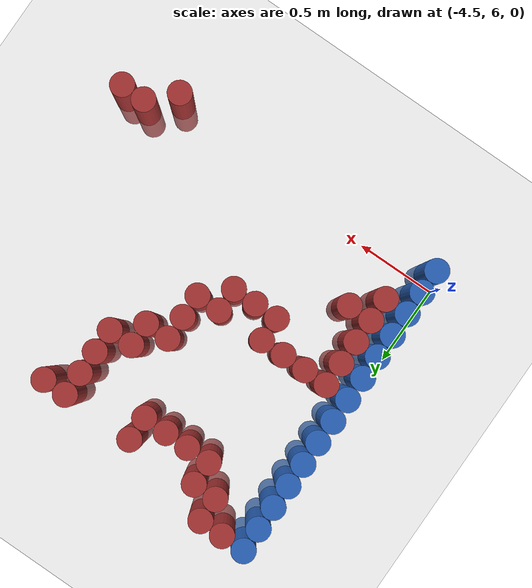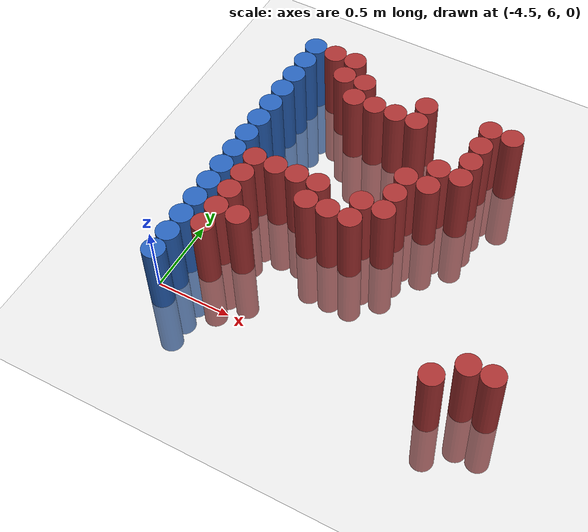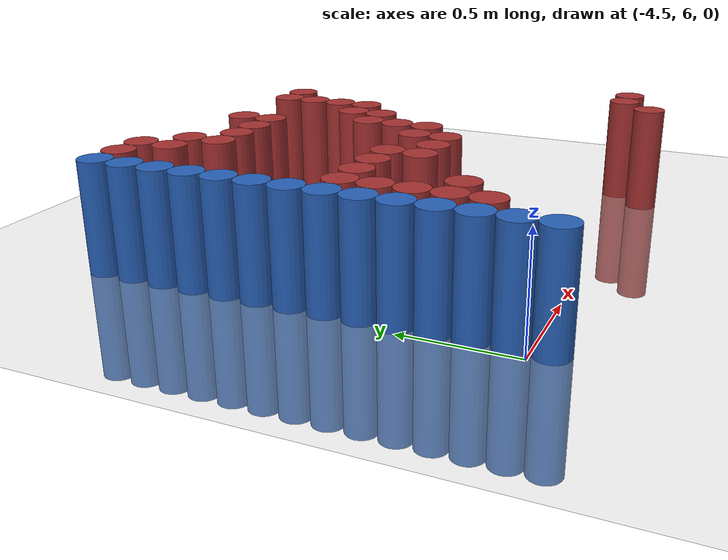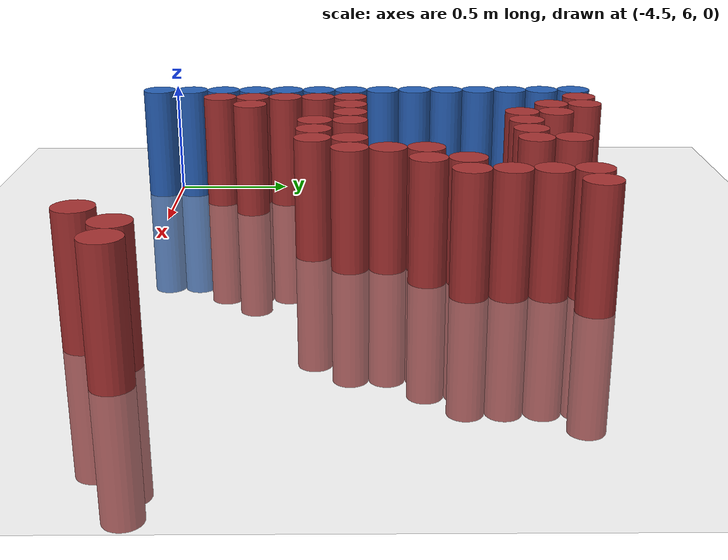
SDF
<sdf version="1.6">
 <world name="default">
  <model name="ground_plane">
   <static>1</static>
   <link name="link">
    <collision name="collision">
     <geometry><plane><normal>0 0 1</normal><size>100 100</size></plane></geometry>
     <surface><friction><ode><mu>100</mu><mu2>50</mu2></ode></friction></surface>
    </collision>
    <visual name="visual">
     <cast_shadows>0</cast_shadows>
     <geometry><plane><normal>0 0 1</normal><size>100 100</size></plane></geometry>
     <material>
      <script><uri>file://media/materials/scripts/gazebo.material</uri><name>Gazebo/Grey</name></script>
     </material>
    </visual>
   </link>
  </model>
  <model name="unit_cylinder_101">
   <static>1</static>
   <pose>-4.425000 5.925000 0.000000 0.000000 0.000000 0.000000</pose>
   <link name="link">
    <inertial>
     <mass>1</mass>
     <inertia><ixx>0.145833</ixx><ixy>0</ixy><ixz>0</ixz><iyy>0.145833</iyy><iyz>0</iyz><izz>0.125</izz></inertia>
    </inertial>
    <collision name="collision">
     <geometry><cylinder><radius>0.075000</radius><length>1</length></cylinder></geometry>
    </collision>
    <visual name="visual">
     <geometry><cylinder><radius>0.075000</radius><length>1</length></cylinder></geometry>
     <material>
      <ambient>0.152000 0.379000 0.720000 1</ambient>
      <diffuse>0.152000 0.379000 0.720000 1</diffuse>
     </material>
     <material>
      <script><name>Gazebo/Grey</name><uri>file://media/materials/scripts/gazebo.material</uri></script>
     </material>
    </visual>
   </link>
  </model>
  <model name="unit_cylinder_102">
   <static>1</static>
   <pose>-4.425000 6.075000 0.000000 0.000000 0.000000 0.000000</pose>
   <link name="link">
    <inertial>
     <mass>1</mass>
     <inertia><ixx>0.145833</ixx><ixy>0</ixy><ixz>0</ixz><iyy>0.145833</iyy><iyz>0</iyz><izz>0.125</izz></inertia>
    </inertial>
    <collision name="collision">
     <geometry><cylinder><radius>0.075000</radius><length>1</length></cylinder></geometry>
    </collision>
    <visual name="visual">
     <geometry><cylinder><radius>0.075000</radius><length>1</length></cylinder></geometry>
     <material>
      <ambient>0.152000 0.379000 0.720000 1</ambient>
      <diffuse>0.152000 0.379000 0.720000 1</diffuse>
     </material>
     <material>
      <script><name>Gazebo/Grey</name><uri>file://media/materials/scripts/gazebo.material</uri></script>
     </material>
    </visual>
   </link>
  </model>
  <model name="unit_cylinder_103">
   <static>1</static>
   <pose>-4.425000 6.225000 0.000000 0.000000 0.000000 0.000000</pose>
   <link name="link">
    <inertial>
     <mass>1</mass>
     <inertia><ixx>0.145833</ixx><ixy>0</ixy><ixz>0</ixz><iyy>0.145833</iyy><iyz>0</iyz><izz>0.125</izz></inertia>
    </inertial>
    <collision name="collision">
     <geometry><cylinder><radius>0.075000</radius><length>1</length></cylinder></geometry>
    </collision>
    <visual name="visual">
     <geometry><cylinder><radius>0.075000</radius><length>1</length></cylinder></geometry>
     <material>
      <ambient>0.152000 0.379000 0.720000 1</ambient>
      <diffuse>0.152000 0.379000 0.720000 1</diffuse>
     </material>
     <material>
      <script><name>Gazebo/Grey</name><uri>file://media/materials/scripts/gazebo.material</uri></script>
     </material>
    </visual>
   </link>
  </model>
  <model name="unit_cylinder_104">
   <static>1</static>
   <pose>-4.425000 6.375000 0.000000 0.000000 0.000000 0.000000</pose>
   <link name="link">
    <inertial>
     <mass>1</mass>
     <inertia><ixx>0.145833</ixx><ixy>0</ixy><ixz>0</ixz><iyy>0.145833</iyy><iyz>0</iyz><izz>0.125</izz></inertia>
    </inertial>
    <collision name="collision">
     <geometry><cylinder><radius>0.075000</radius><length>1</length></cylinder></geometry>
    </collision>
    <visual name="visual">
     <geometry><cylinder><radius>0.075000</radius><length>1</length></cylinder></geometry>
     <material>
      <ambient>0.152000 0.379000 0.720000 1</ambient>
      <diffuse>0.152000 0.379000 0.720000 1</diffuse>
     </material>
     <material>
      <script><name>Gazebo/Grey</name><uri>file://media/materials/scripts/gazebo.material</uri></script>
     </material>
    </visual>
   </link>
  </model>
  <model name="unit_cylinder_105">
   <static>1</static>
   <pose>-4.425000 6.525000 0.000000 0.000000 0.000000 0.000000</pose>
   <link name="link">
    <inertial>
     <mass>1</mass>
     <inertia><ixx>0.145833</ixx><ixy>0</ixy><ixz>0</ixz><iyy>0.145833</iyy><iyz>0</iyz><izz>0.125</izz></inertia>
    </inertial>
    <collision name="collision">
     <geometry><cylinder><radius>0.075000</radius><length>1</length></cylinder></geometry>
    </collision>
    <visual name="visual">
     <geometry><cylinder><radius>0.075000</radius><length>1</length></cylinder></geometry>
     <material>
      <ambient>0.152000 0.379000 0.720000 1</ambient>
      <diffuse>0.152000 0.379000 0.720000 1</diffuse>
     </material>
     <material>
      <script><name>Gazebo/Grey</name><uri>file://media/materials/scripts/gazebo.material</uri></script>
     </material>
    </visual>
   </link>
  </model>
  <model name="unit_cylinder_106">
   <static>1</static>
   <pose>-4.425000 6.675000 0.000000 0.000000 0.000000 0.000000</pose>
   <link name="link">
    <inertial>
     <mass>1</mass>
     <inertia><ixx>0.145833</ixx><ixy>0</ixy><ixz>0</ixz><iyy>0.145833</iyy><iyz>0</iyz><izz>0.125</izz></inertia>
    </inertial>
    <collision name="collision">
     <geometry><cylinder><radius>0.075000</radius><length>1</length></cylinder></geometry>
    </collision>
    <visual name="visual">
     <geometry><cylinder><radius>0.075000</radius><length>1</length></cylinder></geometry>
     <material>
      <ambient>0.152000 0.379000 0.720000 1</ambient>
      <diffuse>0.152000 0.379000 0.720000 1</diffuse>
     </material>
     <material>
      <script><name>Gazebo/Grey</name><uri>file://media/materials/scripts/gazebo.material</uri></script>
     </material>
    </visual>
   </link>
  </model>
  <model name="unit_cylinder_107">
   <static>1</static>
   <pose>-4.425000 6.825000 0.000000 0.000000 0.000000 0.000000</pose>
   <link name="link">
    <inertial>
     <mass>1</mass>
     <inertia><ixx>0.145833</ixx><ixy>0</ixy><ixz>0</ixz><iyy>0.145833</iyy><iyz>0</iyz><izz>0.125</izz></inertia>
    </inertial>
    <collision name="collision">
     <geometry><cylinder><radius>0.075000</radius><length>1</length></cylinder></geometry>
    </collision>
    <visual name="visual">
     <geometry><cylinder><radius>0.075000</radius><length>1</length></cylinder></geometry>
     <material>
      <ambient>0.152000 0.379000 0.720000 1</ambient>
      <diffuse>0.152000 0.379000 0.720000 1</diffuse>
     </material>
     <material>
      <script><name>Gazebo/Grey</name><uri>file://media/materials/scripts/gazebo.material</uri></script>
     </material>
    </visual>
   </link>
  </model>
  <model name="unit_cylinder_108">
   <static>1</static>
   <pose>-4.425000 6.975000 0.000000 0.000000 0.000000 0.000000</pose>
   <link name="link">
    <inertial>
     <mass>1</mass>
     <inertia><ixx>0.145833</ixx><ixy>0</ixy><ixz>0</ixz><iyy>0.145833</iyy><iyz>0</iyz><izz>0.125</izz></inertia>
    </inertial>
    <collision name="collision">
     <geometry><cylinder><radius>0.075000</radius><length>1</length></cylinder></geometry>
    </collision>
    <visual name="visual">
     <geometry><cylinder><radius>0.075000</radius><length>1</length></cylinder></geometry>
     <material>
      <ambient>0.152000 0.379000 0.720000 1</ambient>
      <diffuse>0.152000 0.379000 0.720000 1</diffuse>
     </material>
     <material>
      <script><name>Gazebo/Grey</name><uri>file://media/materials/scripts/gazebo.material</uri></script>
     </material>
    </visual>
   </link>
  </model>
  <model name="unit_cylinder_109">
   <static>1</static>
   <pose>-4.425000 7.125000 0.000000 0.000000 0.000000 0.000000</pose>
   <link name="link">
    <inertial>
     <mass>1</mass>
     <inertia><ixx>0.145833</ixx><ixy>0</ixy><ixz>0</ixz><iyy>0.145833</iyy><iyz>0</iyz><izz>0.125</izz></inertia>
    </inertial>
    <collision name="collision">
     <geometry><cylinder><radius>0.075000</radius><length>1</length></cylinder></geometry>
    </collision>
    <visual name="visual">
     <geometry><cylinder><radius>0.075000</radius><length>1</length></cylinder></geometry>
     <material>
      <ambient>0.152000 0.379000 0.720000 1</ambient>
      <diffuse>0.152000 0.379000 0.720000 1</diffuse>
     </material>
     <material>
      <script><name>Gazebo/Grey</name><uri>file://media/materials/scripts/gazebo.material</uri></script>
     </material>
    </visual>
   </link>
  </model>
  <model name="unit_cylinder_110">
   <static>1</static>
   <pose>-4.425000 7.275000 0.000000 0.000000 0.000000 0.000000</pose>
   <link name="link">
    <inertial>
     <mass>1</mass>
     <inertia><ixx>0.145833</ixx><ixy>0</ixy><ixz>0</ixz><iyy>0.145833</iyy><iyz>0</iyz><izz>0.125</izz></inertia>
    </inertial>
    <collision name="collision">
     <geometry><cylinder><radius>0.075000</radius><length>1</length></cylinder></geometry>
    </collision>
    <visual name="visual">
     <geometry><cylinder><radius>0.075000</radius><length>1</length></cylinder></geometry>
     <material>
      <ambient>0.152000 0.379000 0.720000 1</ambient>
      <diffuse>0.152000 0.379000 0.720000 1</diffuse>
     </material>
     <material>
      <script><name>Gazebo/Grey</name><uri>file://media/materials/scripts/gazebo.material</uri></script>
     </material>
    </visual>
   </link>
  </model>
  <model name="unit_cylinder_111">
   <static>1</static>
   <pose>-4.425000 7.425000 0.000000 0.000000 0.000000 0.000000</pose>
   <link name="link">
    <inertial>
     <mass>1</mass>
     <inertia><ixx>0.145833</ixx><ixy>0</ixy><ixz>0</ixz><iyy>0.145833</iyy><iyz>0</iyz><izz>0.125</izz></inertia>
    </inertial>
    <collision name="collision">
     <geometry><cylinder><radius>0.075000</radius><length>1</length></cylinder></geometry>
    </collision>
    <visual name="visual">
     <geometry><cylinder><radius>0.075000</radius><length>1</length></cylinder></geometry>
     <material>
      <ambient>0.152000 0.379000 0.720000 1</ambient>
      <diffuse>0.152000 0.379000 0.720000 1</diffuse>
     </material>
     <material>
      <script><name>Gazebo/Grey</name><uri>file://media/materials/scripts/gazebo.material</uri></script>
     </material>
    </visual>
   </link>
  </model>
  <model name="unit_cylinder_112">
   <static>1</static>
   <pose>-4.425000 7.575000 0.000000 0.000000 0.000000 0.000000</pose>
   <link name="link">
    <inertial>
     <mass>1</mass>
     <inertia><ixx>0.145833</ixx><ixy>0</ixy><ixz>0</ixz><iyy>0.145833</iyy><iyz>0</iyz><izz>0.125</izz></inertia>
    </inertial>
    <collision name="collision">
     <geometry><cylinder><radius>0.075000</radius><length>1</length></cylinder></geometry>
    </collision>
    <visual name="visual">
     <geometry><cylinder><radius>0.075000</radius><length>1</length></cylinder></geometry>
     <material>
      <ambient>0.152000 0.379000 0.720000 1</ambient>
      <diffuse>0.152000 0.379000 0.720000 1</diffuse>
     </material>
     <material>
      <script><name>Gazebo/Grey</name><uri>file://media/materials/scripts/gazebo.material</uri></script>
     </material>
    </visual>
   </link>
  </model>
  <model name="unit_cylinder_113">
   <static>1</static>
   <pose>-4.425000 7.725000 0.000000 0.000000 0.000000 0.000000</pose>
   <link name="link">
    <inertial>
     <mass>1</mass>
     <inertia><ixx>0.145833</ixx><ixy>0</ixy><ixz>0</ixz><iyy>0.145833</iyy><iyz>0</iyz><izz>0.125</izz></inertia>
    </inertial>
    <collision name="collision">
     <geometry><cylinder><radius>0.075000</radius><length>1</length></cylinder></geometry>
    </collision>
    <visual name="visual">
     <geometry><cylinder><radius>0.075000</radius><length>1</length></cylinder></geometry>
     <material>
      <ambient>0.152000 0.379000 0.720000 1</ambient>
      <diffuse>0.152000 0.379000 0.720000 1</diffuse>
     </material>
     <material>
      <script><name>Gazebo/Grey</name><uri>file://media/materials/scripts/gazebo.material</uri></script>
     </material>
    </visual>
   </link>
  </model>
  <model name="unit_cylinder_114">
   <static>1</static>
   <pose>-4.425000 7.875000 0.000000 0.000000 0.000000 0.000000</pose>
   <link name="link">
    <inertial>
     <mass>1</mass>
     <inertia><ixx>0.145833</ixx><ixy>0</ixy><ixz>0</ixz><iyy>0.145833</iyy><iyz>0</iyz><izz>0.125</izz></inertia>
    </inertial>
    <collision name="collision">
     <geometry><cylinder><radius>0.075000</radius><length>1</length></cylinder></geometry>
    </collision>
    <visual name="visual">
     <geometry><cylinder><radius>0.075000</radius><length>1</length></cylinder></geometry>
     <material>
      <ambient>0.152000 0.379000 0.720000 1</ambient>
      <diffuse>0.152000 0.379000 0.720000 1</diffuse>
     </material>
     <material>
      <script><name>Gazebo/Grey</name><uri>file://media/materials/scripts/gazebo.material</uri></script>
     </material>
    </visual>
   </link>
  </model>
  <model name="unit_cylinder_128">
   <static>1</static>
   <pose>-4.275000 6.225000 0.000000 0.000000 0.000000 0.000000</pose>
   <link name="link">
    <inertial>
     <mass>1</mass>
     <inertia><ixx>0.145833</ixx><ixy>0</ixy><ixz>0</ixz><iyy>0.145833</iyy><iyz>0</iyz><izz>0.125</izz></inertia>
    </inertial>
    <collision name="collision">
     <geometry><cylinder><radius>0.075000</radius><length>1</length></cylinder></geometry>
    </collision>
    <visual name="visual">
     <geometry><cylinder><radius>0.075000</radius><length>1</length></cylinder></geometry>
     <material>
      <ambient>0.648000 0.192000 0.192000 1</ambient>
      <diffuse>0.648000 0.192000 0.192000 1</diffuse>
     </material>
     <material>
      <script><name>Gazebo/Grey</name><uri>file://media/materials/scripts/gazebo.material</uri></script>
     </material>
    </visual>
   </link>
  </model>
  <model name="unit_cylinder_129">
   <static>1</static>
   <pose>-4.275000 6.375000 0.000000 0.000000 0.000000 0.000000</pose>
   <link name="link">
    <inertial>
     <mass>1</mass>
     <inertia><ixx>0.145833</ixx><ixy>0</ixy><ixz>0</ixz><iyy>0.145833</iyy><iyz>0</iyz><izz>0.125</izz></inertia>
    </inertial>
    <collision name="collision">
     <geometry><cylinder><radius>0.075000</radius><length>1</length></cylinder></geometry>
    </collision>
    <visual name="visual">
     <geometry><cylinder><radius>0.075000</radius><length>1</length></cylinder></geometry>
     <material>
      <ambient>0.648000 0.192000 0.192000 1</ambient>
      <diffuse>0.648000 0.192000 0.192000 1</diffuse>
     </material>
     <material>
      <script><name>Gazebo/Grey</name><uri>file://media/materials/scripts/gazebo.material</uri></script>
     </material>
    </visual>
   </link>
  </model>
  <model name="unit_cylinder_130">
   <static>1</static>
   <pose>-4.275000 6.525000 0.000000 0.000000 0.000000 0.000000</pose>
   <link name="link">
    <inertial>
     <mass>1</mass>
     <inertia><ixx>0.145833</ixx><ixy>0</ixy><ixz>0</ixz><iyy>0.145833</iyy><iyz>0</iyz><izz>0.125</izz></inertia>
    </inertial>
    <collision name="collision">
     <geometry><cylinder><radius>0.075000</radius><length>1</length></cylinder></geometry>
    </collision>
    <visual name="visual">
     <geometry><cylinder><radius>0.075000</radius><length>1</length></cylinder></geometry>
     <material>
      <ambient>0.648000 0.192000 0.192000 1</ambient>
      <diffuse>0.648000 0.192000 0.192000 1</diffuse>
     </material>
     <material>
      <script><name>Gazebo/Grey</name><uri>file://media/materials/scripts/gazebo.material</uri></script>
     </material>
    </visual>
   </link>
  </model>
  <model name="unit_cylinder_131">
   <static>1</static>
   <pose>-4.275000 6.675000 0.000000 0.000000 0.000000 0.000000</pose>
   <link name="link">
    <inertial>
     <mass>1</mass>
     <inertia><ixx>0.145833</ixx><ixy>0</ixy><ixz>0</ixz><iyy>0.145833</iyy><iyz>0</iyz><izz>0.125</izz></inertia>
    </inertial>
    <collision name="collision">
     <geometry><cylinder><radius>0.075000</radius><length>1</length></cylinder></geometry>
    </collision>
    <visual name="visual">
     <geometry><cylinder><radius>0.075000</radius><length>1</length></cylinder></geometry>
     <material>
      <ambient>0.648000 0.192000 0.192000 1</ambient>
      <diffuse>0.648000 0.192000 0.192000 1</diffuse>
     </material>
     <material>
      <script><name>Gazebo/Grey</name><uri>file://media/materials/scripts/gazebo.material</uri></script>
     </material>
    </visual>
   </link>
  </model>
  <model name="unit_cylinder_132">
   <static>1</static>
   <pose>-4.275000 6.825000 0.000000 0.000000 0.000000 0.000000</pose>
   <link name="link">
    <inertial>
     <mass>1</mass>
     <inertia><ixx>0.145833</ixx><ixy>0</ixy><ixz>0</ixz><iyy>0.145833</iyy><iyz>0</iyz><izz>0.125</izz></inertia>
    </inertial>
    <collision name="collision">
     <geometry><cylinder><radius>0.075000</radius><length>1</length></cylinder></geometry>
    </collision>
    <visual name="visual">
     <geometry><cylinder><radius>0.075000</radius><length>1</length></cylinder></geometry>
     <material>
      <ambient>0.648000 0.192000 0.192000 1</ambient>
      <diffuse>0.648000 0.192000 0.192000 1</diffuse>
     </material>
     <material>
      <script><name>Gazebo/Grey</name><uri>file://media/materials/scripts/gazebo.material</uri></script>
     </material>
    </visual>
   </link>
  </model>
  <model name="unit_cylinder_133">
   <static>1</static>
   <pose>-4.275000 7.875000 0.000000 0.000000 0.000000 0.000000</pose>
   <link name="link">
    <inertial>
     <mass>1</mass>
     <inertia><ixx>0.145833</ixx><ixy>0</ixy><ixz>0</ixz><iyy>0.145833</iyy><iyz>0</iyz><izz>0.125</izz></inertia>
    </inertial>
    <collision name="collision">
     <geometry><cylinder><radius>0.075000</radius><length>1</length></cylinder></geometry>
    </collision>
    <visual name="visual">
     <geometry><cylinder><radius>0.075000</radius><length>1</length></cylinder></geometry>
     <material>
      <ambient>0.648000 0.192000 0.192000 1</ambient>
      <diffuse>0.648000 0.192000 0.192000 1</diffuse>
     </material>
     <material>
      <script><name>Gazebo/Grey</name><uri>file://media/materials/scripts/gazebo.material</uri></script>
     </material>
    </visual>
   </link>
  </model>
  <model name="unit_cylinder_140">
   <static>1</static>
   <pose>-4.125000 6.375000 0.000000 0.000000 0.000000 0.000000</pose>
   <link name="link">
    <inertial>
     <mass>1</mass>
     <inertia><ixx>0.145833</ixx><ixy>0</ixy><ixz>0</ixz><iyy>0.145833</iyy><iyz>0</iyz><izz>0.125</izz></inertia>
    </inertial>
    <collision name="collision">
     <geometry><cylinder><radius>0.075000</radius><length>1</length></cylinder></geometry>
    </collision>
    <visual name="visual">
     <geometry><cylinder><radius>0.075000</radius><length>1</length></cylinder></geometry>
     <material>
      <ambient>0.648000 0.192000 0.192000 1</ambient>
      <diffuse>0.648000 0.192000 0.192000 1</diffuse>
     </material>
     <material>
      <script><name>Gazebo/Grey</name><uri>file://media/materials/scripts/gazebo.material</uri></script>
     </material>
    </visual>
   </link>
  </model>
  <model name="unit_cylinder_141">
   <static>1</static>
   <pose>-4.125000 6.825000 0.000000 0.000000 0.000000 0.000000</pose>
   <link name="link">
    <inertial>
     <mass>1</mass>
     <inertia><ixx>0.145833</ixx><ixy>0</ixy><ixz>0</ixz><iyy>0.145833</iyy><iyz>0</iyz><izz>0.125</izz></inertia>
    </inertial>
    <collision name="collision">
     <geometry><cylinder><radius>0.075000</radius><length>1</length></cylinder></geometry>
    </collision>
    <visual name="visual">
     <geometry><cylinder><radius>0.075000</radius><length>1</length></cylinder></geometry>
     <material>
      <ambient>0.648000 0.192000 0.192000 1</ambient>
      <diffuse>0.648000 0.192000 0.192000 1</diffuse>
     </material>
     <material>
      <script><name>Gazebo/Grey</name><uri>file://media/materials/scripts/gazebo.material</uri></script>
     </material>
    </visual>
   </link>
  </model>
  <model name="unit_cylinder_142">
   <static>1</static>
   <pose>-4.125000 7.725000 0.000000 0.000000 0.000000 0.000000</pose>
   <link name="link">
    <inertial>
     <mass>1</mass>
     <inertia><ixx>0.145833</ixx><ixy>0</ixy><ixz>0</ixz><iyy>0.145833</iyy><iyz>0</iyz><izz>0.125</izz></inertia>
    </inertial>
    <collision name="collision">
     <geometry><cylinder><radius>0.075000</radius><length>1</length></cylinder></geometry>
    </collision>
    <visual name="visual">
     <geometry><cylinder><radius>0.075000</radius><length>1</length></cylinder></geometry>
     <material>
      <ambient>0.648000 0.192000 0.192000 1</ambient>
      <diffuse>0.648000 0.192000 0.192000 1</diffuse>
     </material>
     <material>
      <script><name>Gazebo/Grey</name><uri>file://media/materials/scripts/gazebo.material</uri></script>
     </material>
    </visual>
   </link>
  </model>
  <model name="unit_cylinder_143">
   <static>1</static>
   <pose>-4.125000 7.875000 0.000000 0.000000 0.000000 0.000000</pose>
   <link name="link">
    <inertial>
     <mass>1</mass>
     <inertia><ixx>0.145833</ixx><ixy>0</ixy><ixz>0</ixz><iyy>0.145833</iyy><iyz>0</iyz><izz>0.125</izz></inertia>
    </inertial>
    <collision name="collision">
     <geometry><cylinder><radius>0.075000</radius><length>1</length></cylinder></geometry>
    </collision>
    <visual name="visual">
     <geometry><cylinder><radius>0.075000</radius><length>1</length></cylinder></geometry>
     <material>
      <ambient>0.648000 0.192000 0.192000 1</ambient>
      <diffuse>0.648000 0.192000 0.192000 1</diffuse>
     </material>
     <material>
      <script><name>Gazebo/Grey</name><uri>file://media/materials/scripts/gazebo.material</uri></script>
     </material>
    </visual>
   </link>
  </model>
  <model name="unit_cylinder_146">
   <static>1</static>
   <pose>-3.975000 6.825000 0.000000 0.000000 0.000000 0.000000</pose>
   <link name="link">
    <inertial>
     <mass>1</mass>
     <inertia><ixx>0.145833</ixx><ixy>0</ixy><ixz>0</ixz><iyy>0.145833</iyy><iyz>0</iyz><izz>0.125</izz></inertia>
    </inertial>
    <collision name="collision">
     <geometry><cylinder><radius>0.075000</radius><length>1</length></cylinder></geometry>
    </collision>
    <visual name="visual">
     <geometry><cylinder><radius>0.075000</radius><length>1</length></cylinder></geometry>
     <material>
      <ambient>0.648000 0.192000 0.192000 1</ambient>
      <diffuse>0.648000 0.192000 0.192000 1</diffuse>
     </material>
     <material>
      <script><name>Gazebo/Grey</name><uri>file://media/materials/scripts/gazebo.material</uri></script>
     </material>
    </visual>
   </link>
  </model>
  <model name="unit_cylinder_147">
   <static>1</static>
   <pose>-3.975000 7.575000 0.000000 0.000000 0.000000 0.000000</pose>
   <link name="link">
    <inertial>
     <mass>1</mass>
     <inertia><ixx>0.145833</ixx><ixy>0</ixy><ixz>0</ixz><iyy>0.145833</iyy><iyz>0</iyz><izz>0.125</izz></inertia>
    </inertial>
    <collision name="collision">
     <geometry><cylinder><radius>0.075000</radius><length>1</length></cylinder></geometry>
    </collision>
    <visual name="visual">
     <geometry><cylinder><radius>0.075000</radius><length>1</length></cylinder></geometry>
     <material>
      <ambient>0.648000 0.192000 0.192000 1</ambient>
      <diffuse>0.648000 0.192000 0.192000 1</diffuse>
     </material>
     <material>
      <script><name>Gazebo/Grey</name><uri>file://media/materials/scripts/gazebo.material</uri></script>
     </material>
    </visual>
   </link>
  </model>
  <model name="unit_cylinder_148">
   <static>1</static>
   <pose>-3.975000 7.725000 0.000000 0.000000 0.000000 0.000000</pose>
   <link name="link">
    <inertial>
     <mass>1</mass>
     <inertia><ixx>0.145833</ixx><ixy>0</ixy><ixz>0</ixz><iyy>0.145833</iyy><iyz>0</iyz><izz>0.125</izz></inertia>
    </inertial>
    <collision name="collision">
     <geometry><cylinder><radius>0.075000</radius><length>1</length></cylinder></geometry>
    </collision>
    <visual name="visual">
     <geometry><cylinder><radius>0.075000</radius><length>1</length></cylinder></geometry>
     <material>
      <ambient>0.648000 0.192000 0.192000 1</ambient>
      <diffuse>0.648000 0.192000 0.192000 1</diffuse>
     </material>
     <material>
      <script><name>Gazebo/Grey</name><uri>file://media/materials/scripts/gazebo.material</uri></script>
     </material>
    </visual>
   </link>
  </model>
  <model name="unit_cylinder_151">
   <static>1</static>
   <pose>-3.825000 6.675000 0.000000 0.000000 0.000000 0.000000</pose>
   <link name="link">
    <inertial>
     <mass>1</mass>
     <inertia><ixx>0.145833</ixx><ixy>0</ixy><ixz>0</ixz><iyy>0.145833</iyy><iyz>0</iyz><izz>0.125</izz></inertia>
    </inertial>
    <collision name="collision">
     <geometry><cylinder><radius>0.075000</radius><length>1</length></cylinder></geometry>
    </collision>
    <visual name="visual">
     <geometry><cylinder><radius>0.075000</radius><length>1</length></cylinder></geometry>
     <material>
      <ambient>0.648000 0.192000 0.192000 1</ambient>
      <diffuse>0.648000 0.192000 0.192000 1</diffuse>
     </material>
     <material>
      <script><name>Gazebo/Grey</name><uri>file://media/materials/scripts/gazebo.material</uri></script>
     </material>
    </visual>
   </link>
  </model>
  <model name="unit_cylinder_152">
   <static>1</static>
   <pose>-3.825000 6.825000 0.000000 0.000000 0.000000 0.000000</pose>
   <link name="link">
    <inertial>
     <mass>1</mass>
     <inertia><ixx>0.145833</ixx><ixy>0</ixy><ixz>0</ixz><iyy>0.145833</iyy><iyz>0</iyz><izz>0.125</izz></inertia>
    </inertial>
    <collision name="collision">
     <geometry><cylinder><radius>0.075000</radius><length>1</length></cylinder></geometry>
    </collision>
    <visual name="visual">
     <geometry><cylinder><radius>0.075000</radius><length>1</length></cylinder></geometry>
     <material>
      <ambient>0.648000 0.192000 0.192000 1</ambient>
      <diffuse>0.648000 0.192000 0.192000 1</diffuse>
     </material>
     <material>
      <script><name>Gazebo/Grey</name><uri>file://media/materials/scripts/gazebo.material</uri></script>
     </material>
    </visual>
   </link>
  </model>
  <model name="unit_cylinder_153">
   <static>1</static>
   <pose>-3.825000 7.575000 0.000000 0.000000 0.000000 0.000000</pose>
   <link name="link">
    <inertial>
     <mass>1</mass>
     <inertia><ixx>0.145833</ixx><ixy>0</ixy><ixz>0</ixz><iyy>0.145833</iyy><iyz>0</iyz><izz>0.125</izz></inertia>
    </inertial>
    <collision name="collision">
     <geometry><cylinder><radius>0.075000</radius><length>1</length></cylinder></geometry>
    </collision>
    <visual name="visual">
     <geometry><cylinder><radius>0.075000</radius><length>1</length></cylinder></geometry>
     <material>
      <ambient>0.648000 0.192000 0.192000 1</ambient>
      <diffuse>0.648000 0.192000 0.192000 1</diffuse>
     </material>
     <material>
      <script><name>Gazebo/Grey</name><uri>file://media/materials/scripts/gazebo.material</uri></script>
     </material>
    </visual>
   </link>
  </model>
  <model name="unit_cylinder_156">
   <static>1</static>
   <pose>-3.675000 6.675000 0.000000 0.000000 0.000000 0.000000</pose>
   <link name="link">
    <inertial>
     <mass>1</mass>
     <inertia><ixx>0.145833</ixx><ixy>0</ixy><ixz>0</ixz><iyy>0.145833</iyy><iyz>0</iyz><izz>0.125</izz></inertia>
    </inertial>
    <collision name="collision">
     <geometry><cylinder><radius>0.075000</radius><length>1</length></cylinder></geometry>
    </collision>
    <visual name="visual">
     <geometry><cylinder><radius>0.075000</radius><length>1</length></cylinder></geometry>
     <material>
      <ambient>0.648000 0.192000 0.192000 1</ambient>
      <diffuse>0.648000 0.192000 0.192000 1</diffuse>
     </material>
     <material>
      <script><name>Gazebo/Grey</name><uri>file://media/materials/scripts/gazebo.material</uri></script>
     </material>
    </visual>
   </link>
  </model>
  <model name="unit_cylinder_157">
   <static>1</static>
   <pose>-3.675000 7.575000 0.000000 0.000000 0.000000 0.000000</pose>
   <link name="link">
    <inertial>
     <mass>1</mass>
     <inertia><ixx>0.145833</ixx><ixy>0</ixy><ixz>0</ixz><iyy>0.145833</iyy><iyz>0</iyz><izz>0.125</izz></inertia>
    </inertial>
    <collision name="collision">
     <geometry><cylinder><radius>0.075000</radius><length>1</length></cylinder></geometry>
    </collision>
    <visual name="visual">
     <geometry><cylinder><radius>0.075000</radius><length>1</length></cylinder></geometry>
     <material>
      <ambient>0.648000 0.192000 0.192000 1</ambient>
      <diffuse>0.648000 0.192000 0.192000 1</diffuse>
     </material>
     <material>
      <script><name>Gazebo/Grey</name><uri>file://media/materials/scripts/gazebo.material</uri></script>
     </material>
    </visual>
   </link>
  </model>
  <model name="unit_cylinder_166">
   <static>1</static>
   <pose>-3.525000 6.675000 0.000000 0.000000 0.000000 0.000000</pose>
   <link name="link">
    <inertial>
     <mass>1</mass>
     <inertia><ixx>0.145833</ixx><ixy>0</ixy><ixz>0</ixz><iyy>0.145833</iyy><iyz>0</iyz><izz>0.125</izz></inertia>
    </inertial>
    <collision name="collision">
     <geometry><cylinder><radius>0.075000</radius><length>1</length></cylinder></geometry>
    </collision>
    <visual name="visual">
     <geometry><cylinder><radius>0.075000</radius><length>1</length></cylinder></geometry>
     <material>
      <ambient>0.648000 0.192000 0.192000 1</ambient>
      <diffuse>0.648000 0.192000 0.192000 1</diffuse>
     </material>
     <material>
      <script><name>Gazebo/Grey</name><uri>file://media/materials/scripts/gazebo.material</uri></script>
     </material>
    </visual>
   </link>
  </model>
  <model name="unit_cylinder_167">
   <static>1</static>
   <pose>-3.525000 6.825000 0.000000 0.000000 0.000000 0.000000</pose>
   <link name="link">
    <inertial>
     <mass>1</mass>
     <inertia><ixx>0.145833</ixx><ixy>0</ixy><ixz>0</ixz><iyy>0.145833</iyy><iyz>0</iyz><izz>0.125</izz></inertia>
    </inertial>
    <collision name="collision">
     <geometry><cylinder><radius>0.075000</radius><length>1</length></cylinder></geometry>
    </collision>
    <visual name="visual">
     <geometry><cylinder><radius>0.075000</radius><length>1</length></cylinder></geometry>
     <material>
      <ambient>0.648000 0.192000 0.192000 1</ambient>
      <diffuse>0.648000 0.192000 0.192000 1</diffuse>
     </material>
     <material>
      <script><name>Gazebo/Grey</name><uri>file://media/materials/scripts/gazebo.material</uri></script>
     </material>
    </visual>
   </link>
  </model>
  <model name="unit_cylinder_168">
   <static>1</static>
   <pose>-3.525000 7.575000 0.000000 0.000000 0.000000 0.000000</pose>
   <link name="link">
    <inertial>
     <mass>1</mass>
     <inertia><ixx>0.145833</ixx><ixy>0</ixy><ixz>0</ixz><iyy>0.145833</iyy><iyz>0</iyz><izz>0.125</izz></inertia>
    </inertial>
    <collision name="collision">
     <geometry><cylinder><radius>0.075000</radius><length>1</length></cylinder></geometry>
    </collision>
    <visual name="visual">
     <geometry><cylinder><radius>0.075000</radius><length>1</length></cylinder></geometry>
     <material>
      <ambient>0.648000 0.192000 0.192000 1</ambient>
      <diffuse>0.648000 0.192000 0.192000 1</diffuse>
     </material>
     <material>
      <script><name>Gazebo/Grey</name><uri>file://media/materials/scripts/gazebo.material</uri></script>
     </material>
    </visual>
   </link>
  </model>
  <model name="unit_cylinder_169">
   <static>1</static>
   <pose>-3.525000 7.725000 0.000000 0.000000 0.000000 0.000000</pose>
   <link name="link">
    <inertial>
     <mass>1</mass>
     <inertia><ixx>0.145833</ixx><ixy>0</ixy><ixz>0</ixz><iyy>0.145833</iyy><iyz>0</iyz><izz>0.125</izz></inertia>
    </inertial>
    <collision name="collision">
     <geometry><cylinder><radius>0.075000</radius><length>1</length></cylinder></geometry>
    </collision>
    <visual name="visual">
     <geometry><cylinder><radius>0.075000</radius><length>1</length></cylinder></geometry>
     <material>
      <ambient>0.648000 0.192000 0.192000 1</ambient>
      <diffuse>0.648000 0.192000 0.192000 1</diffuse>
     </material>
     <material>
      <script><name>Gazebo/Grey</name><uri>file://media/materials/scripts/gazebo.material</uri></script>
     </material>
    </visual>
   </link>
  </model>
  <model name="unit_cylinder_178">
   <static>1</static>
   <pose>-3.375000 6.825000 0.000000 0.000000 0.000000 0.000000</pose>
   <link name="link">
    <inertial>
     <mass>1</mass>
     <inertia><ixx>0.145833</ixx><ixy>0</ixy><ixz>0</ixz><iyy>0.145833</iyy><iyz>0</iyz><izz>0.125</izz></inertia>
    </inertial>
    <collision name="collision">
     <geometry><cylinder><radius>0.075000</radius><length>1</length></cylinder></geometry>
    </collision>
    <visual name="visual">
     <geometry><cylinder><radius>0.075000</radius><length>1</length></cylinder></geometry>
     <material>
      <ambient>0.648000 0.192000 0.192000 1</ambient>
      <diffuse>0.648000 0.192000 0.192000 1</diffuse>
     </material>
     <material>
      <script><name>Gazebo/Grey</name><uri>file://media/materials/scripts/gazebo.material</uri></script>
     </material>
    </visual>
   </link>
  </model>
  <model name="unit_cylinder_179">
   <static>1</static>
   <pose>-3.375000 6.975000 0.000000 0.000000 0.000000 0.000000</pose>
   <link name="link">
    <inertial>
     <mass>1</mass>
     <inertia><ixx>0.145833</ixx><ixy>0</ixy><ixz>0</ixz><iyy>0.145833</iyy><iyz>0</iyz><izz>0.125</izz></inertia>
    </inertial>
    <collision name="collision">
     <geometry><cylinder><radius>0.075000</radius><length>1</length></cylinder></geometry>
    </collision>
    <visual name="visual">
     <geometry><cylinder><radius>0.075000</radius><length>1</length></cylinder></geometry>
     <material>
      <ambient>0.648000 0.192000 0.192000 1</ambient>
      <diffuse>0.648000 0.192000 0.192000 1</diffuse>
     </material>
     <material>
      <script><name>Gazebo/Grey</name><uri>file://media/materials/scripts/gazebo.material</uri></script>
     </material>
    </visual>
   </link>
  </model>
  <model name="unit_cylinder_180">
   <static>1</static>
   <pose>-3.375000 7.125000 0.000000 0.000000 0.000000 0.000000</pose>
   <link name="link">
    <inertial>
     <mass>1</mass>
     <inertia><ixx>0.145833</ixx><ixy>0</ixy><ixz>0</ixz><iyy>0.145833</iyy><iyz>0</iyz><izz>0.125</izz></inertia>
    </inertial>
    <collision name="collision">
     <geometry><cylinder><radius>0.075000</radius><length>1</length></cylinder></geometry>
    </collision>
    <visual name="visual">
     <geometry><cylinder><radius>0.075000</radius><length>1</length></cylinder></geometry>
     <material>
      <ambient>0.648000 0.192000 0.192000 1</ambient>
      <diffuse>0.648000 0.192000 0.192000 1</diffuse>
     </material>
     <material>
      <script><name>Gazebo/Grey</name><uri>file://media/materials/scripts/gazebo.material</uri></script>
     </material>
    </visual>
   </link>
  </model>
  <model name="unit_cylinder_187">
   <static>1</static>
   <pose>-3.225000 7.125000 0.000000 0.000000 0.000000 0.000000</pose>
   <link name="link">
    <inertial>
     <mass>1</mass>
     <inertia><ixx>0.145833</ixx><ixy>0</ixy><ixz>0</ixz><iyy>0.145833</iyy><iyz>0</iyz><izz>0.125</izz></inertia>
    </inertial>
    <collision name="collision">
     <geometry><cylinder><radius>0.075000</radius><length>1</length></cylinder></geometry>
    </collision>
    <visual name="visual">
     <geometry><cylinder><radius>0.075000</radius><length>1</length></cylinder></geometry>
     <material>
      <ambient>0.648000 0.192000 0.192000 1</ambient>
      <diffuse>0.648000 0.192000 0.192000 1</diffuse>
     </material>
     <material>
      <script><name>Gazebo/Grey</name><uri>file://media/materials/scripts/gazebo.material</uri></script>
     </material>
    </visual>
   </link>
  </model>
  <model name="unit_cylinder_188">
   <static>1</static>
   <pose>-3.225000 7.275000 0.000000 0.000000 0.000000 0.000000</pose>
   <link name="link">
    <inertial>
     <mass>1</mass>
     <inertia><ixx>0.145833</ixx><ixy>0</ixy><ixz>0</ixz><iyy>0.145833</iyy><iyz>0</iyz><izz>0.125</izz></inertia>
    </inertial>
    <collision name="collision">
     <geometry><cylinder><radius>0.075000</radius><length>1</length></cylinder></geometry>
    </collision>
    <visual name="visual">
     <geometry><cylinder><radius>0.075000</radius><length>1</length></cylinder></geometry>
     <material>
      <ambient>0.648000 0.192000 0.192000 1</ambient>
      <diffuse>0.648000 0.192000 0.192000 1</diffuse>
     </material>
     <material>
      <script><name>Gazebo/Grey</name><uri>file://media/materials/scripts/gazebo.material</uri></script>
     </material>
    </visual>
   </link>
  </model>
  <model name="unit_cylinder_191">
   <static>1</static>
   <pose>-3.075000 7.275000 0.000000 0.000000 0.000000 0.000000</pose>
   <link name="link">
    <inertial>
     <mass>1</mass>
     <inertia><ixx>0.145833</ixx><ixy>0</ixy><ixz>0</ixz><iyy>0.145833</iyy><iyz>0</iyz><izz>0.125</izz></inertia>
    </inertial>
    <collision name="collision">
     <geometry><cylinder><radius>0.075000</radius><length>1</length></cylinder></geometry>
    </collision>
    <visual name="visual">
     <geometry><cylinder><radius>0.075000</radius><length>1</length></cylinder></geometry>
     <material>
      <ambient>0.648000 0.192000 0.192000 1</ambient>
      <diffuse>0.648000 0.192000 0.192000 1</diffuse>
     </material>
     <material>
      <script><name>Gazebo/Grey</name><uri>file://media/materials/scripts/gazebo.material</uri></script>
     </material>
    </visual>
   </link>
  </model>
  <model name="unit_cylinder_192">
   <static>1</static>
   <pose>-3.075000 7.425000 0.000000 0.000000 0.000000 0.000000</pose>
   <link name="link">
    <inertial>
     <mass>1</mass>
     <inertia><ixx>0.145833</ixx><ixy>0</ixy><ixz>0</ixz><iyy>0.145833</iyy><iyz>0</iyz><izz>0.125</izz></inertia>
    </inertial>
    <collision name="collision">
     <geometry><cylinder><radius>0.075000</radius><length>1</length></cylinder></geometry>
    </collision>
    <visual name="visual">
     <geometry><cylinder><radius>0.075000</radius><length>1</length></cylinder></geometry>
     <material>
      <ambient>0.648000 0.192000 0.192000 1</ambient>
      <diffuse>0.648000 0.192000 0.192000 1</diffuse>
     </material>
     <material>
      <script><name>Gazebo/Grey</name><uri>file://media/materials/scripts/gazebo.material</uri></script>
     </material>
    </visual>
   </link>
  </model>
  <model name="unit_cylinder_193">
   <static>1</static>
   <pose>-3.075000 7.575000 0.000000 0.000000 0.000000 0.000000</pose>
   <link name="link">
    <inertial>
     <mass>1</mass>
     <inertia><ixx>0.145833</ixx><ixy>0</ixy><ixz>0</ixz><iyy>0.145833</iyy><iyz>0</iyz><izz>0.125</izz></inertia>
    </inertial>
    <collision name="collision">
     <geometry><cylinder><radius>0.075000</radius><length>1</length></cylinder></geometry>
    </collision>
    <visual name="visual">
     <geometry><cylinder><radius>0.075000</radius><length>1</length></cylinder></geometry>
     <material>
      <ambient>0.648000 0.192000 0.192000 1</ambient>
      <diffuse>0.648000 0.192000 0.192000 1</diffuse>
     </material>
     <material>
      <script><name>Gazebo/Grey</name><uri>file://media/materials/scripts/gazebo.material</uri></script>
     </material>
    </visual>
   </link>
  </model>
  <model name="unit_cylinder_194">
   <static>1</static>
   <pose>-3.075000 7.725000 0.000000 0.000000 0.000000 0.000000</pose>
   <link name="link">
    <inertial>
     <mass>1</mass>
     <inertia><ixx>0.145833</ixx><ixy>0</ixy><ixz>0</ixz><iyy>0.145833</iyy><iyz>0</iyz><izz>0.125</izz></inertia>
    </inertial>
    <collision name="collision">
     <geometry><cylinder><radius>0.075000</radius><length>1</length></cylinder></geometry>
    </collision>
    <visual name="visual">
     <geometry><cylinder><radius>0.075000</radius><length>1</length></cylinder></geometry>
     <material>
      <ambient>0.648000 0.192000 0.192000 1</ambient>
      <diffuse>0.648000 0.192000 0.192000 1</diffuse>
     </material>
     <material>
      <script><name>Gazebo/Grey</name><uri>file://media/materials/scripts/gazebo.material</uri></script>
     </material>
    </visual>
   </link>
  </model>
  <model name="unit_cylinder_197">
   <static>1</static>
   <pose>-2.925000 7.725000 0.000000 0.000000 0.000000 0.000000</pose>
   <link name="link">
    <inertial>
     <mass>1</mass>
     <inertia><ixx>0.145833</ixx><ixy>0</ixy><ixz>0</ixz><iyy>0.145833</iyy><iyz>0</iyz><izz>0.125</izz></inertia>
    </inertial>
    <collision name="collision">
     <geometry><cylinder><radius>0.075000</radius><length>1</length></cylinder></geometry>
    </collision>
    <visual name="visual">
     <geometry><cylinder><radius>0.075000</radius><length>1</length></cylinder></geometry>
     <material>
      <ambient>0.648000 0.192000 0.192000 1</ambient>
      <diffuse>0.648000 0.192000 0.192000 1</diffuse>
     </material>
     <material>
      <script><name>Gazebo/Grey</name><uri>file://media/materials/scripts/gazebo.material</uri></script>
     </material>
    </visual>
   </link>
  </model>
  <model name="unit_cylinder_202">
   <static>1</static>
   <pose>-2.625000 5.925000 0.000000 0.000000 0.000000 0.000000</pose>
   <link name="link">
    <inertial>
     <mass>1</mass>
     <inertia><ixx>0.145833</ixx><ixy>0</ixy><ixz>0</ixz><iyy>0.145833</iyy><iyz>0</iyz><izz>0.125</izz></inertia>
    </inertial>
    <collision name="collision">
     <geometry><cylinder><radius>0.075000</radius><length>1</length></cylinder></geometry>
    </collision>
    <visual name="visual">
     <geometry><cylinder><radius>0.075000</radius><length>1</length></cylinder></geometry>
     <material>
      <ambient>0.648000 0.192000 0.192000 1</ambient>
      <diffuse>0.648000 0.192000 0.192000 1</diffuse>
     </material>
     <material>
      <script><name>Gazebo/Grey</name><uri>file://media/materials/scripts/gazebo.material</uri></script>
     </material>
    </visual>
   </link>
  </model>
  <model name="unit_cylinder_204">
   <static>1</static>
   <pose>-2.475000 6.075000 0.000000 0.000000 0.000000 0.000000</pose>
   <link name="link">
    <inertial>
     <mass>1</mass>
     <inertia><ixx>0.145833</ixx><ixy>0</ixy><ixz>0</ixz><iyy>0.145833</iyy><iyz>0</iyz><izz>0.125</izz></inertia>
    </inertial>
    <collision name="collision">
     <geometry><cylinder><radius>0.075000</radius><length>1</length></cylinder></geometry>
    </collision>
    <visual name="visual">
     <geometry><cylinder><radius>0.075000</radius><length>1</length></cylinder></geometry>
     <material>
      <ambient>0.648000 0.192000 0.192000 1</ambient>
      <diffuse>0.648000 0.192000 0.192000 1</diffuse>
     </material>
     <material>
      <script><name>Gazebo/Grey</name><uri>file://media/materials/scripts/gazebo.material</uri></script>
     </material>
    </visual>
   </link>
  </model>
  <model name="unit_cylinder_207">
   <static>1</static>
   <pose>-2.325000 6.075000 0.000000 0.000000 0.000000 0.000000</pose>
   <link name="link">
    <inertial>
     <mass>1</mass>
     <inertia><ixx>0.145833</ixx><ixy>0</ixy><ixz>0</ixz><iyy>0.145833</iyy><iyz>0</iyz><izz>0.125</izz></inertia>
    </inertial>
    <collision name="collision">
     <geometry><cylinder><radius>0.075000</radius><length>1</length></cylinder></geometry>
    </collision>
    <visual name="visual">
     <geometry><cylinder><radius>0.075000</radius><length>1</length></cylinder></geometry>
     <material>
      <ambient>0.648000 0.192000 0.192000 1</ambient>
      <diffuse>0.648000 0.192000 0.192000 1</diffuse>
     </material>
     <material>
      <script><name>Gazebo/Grey</name><uri>file://media/materials/scripts/gazebo.material</uri></script>
     </material>
    </visual>
   </link>
  </model>
 </world>
</sdf>
